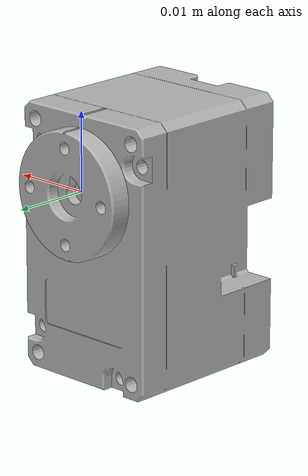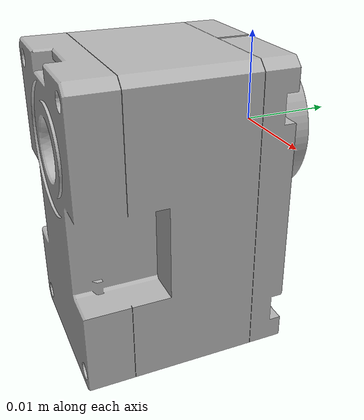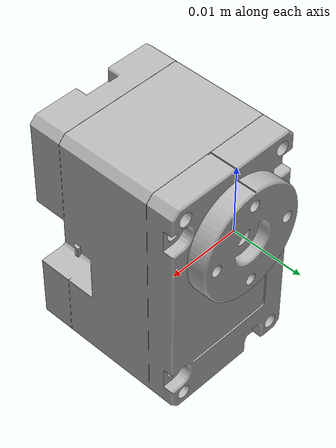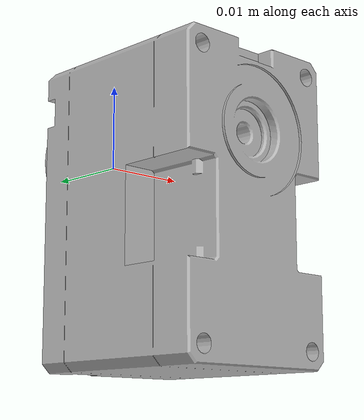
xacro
<?xml version="1.0" ?>
<robot name="dynamixel" xmlns:xacro="http://www.ros.org/wiki/xacro">

<xacro:include filename="$(find dynamixel_description)/urdf/materials.xacro" />
<xacro:include filename="$(find dynamixel_description)/urdf/dynamixel.trans" />
<xacro:include filename="$(find dynamixel_description)/urdf/dynamixel.gazebo" />

<link name="base_link">
  <inertial>
    <origin xyz="-1.3696546658476628e-05 -0.011227940210464343 -0.007509758370360145" rpy="0 0 0"/>
    <mass value="0.11123576534541824"/>
    <inertia ixx="1.6e-05" iyy="1.4e-05" izz="8e-06" ixy="0.0" iyz="-0.0" ixz="-0.0"/>
  </inertial>
  <visual>
    <origin xyz="0 0 0" rpy="0 0 0"/>
    <geometry>
      <mesh filename="package://dynamixel_description/meshes/base_link.stl" scale="0.001 0.001 0.001"/>
    </geometry>
    <material name="silver"/>
  </visual>
  <collision>
    <origin xyz="0 0 0" rpy="0 0 0"/>
    <geometry>
      <mesh filename="package://dynamixel_description/meshes/base_link.stl" scale="0.001 0.001 0.001"/>
    </geometry>
  </collision>
</link>

<link name="shaft_1">
  <inertial>
    <origin xyz="-6.524556626078737e-14 0.0014988491033203202 -3.996224044255299e-06" rpy="0 0 0"/>
    <mass value="0.004031659689068819"/>
    <inertia ixx="0.0" iyy="0.0" izz="0.0" ixy="0.0" iyz="-0.0" ixz="0.0"/>
  </inertial>
  <visual>
    <origin xyz="-0.0 0.0001 -0.0" rpy="0 0 0"/>
    <geometry>
      <mesh filename="package://dynamixel_description/meshes/shaft_1.stl" scale="0.001 0.001 0.001"/>
    </geometry>
    <material name="silver"/>
  </visual>
  <collision>
    <origin xyz="-0.0 0.0001 -0.0" rpy="0 0 0"/>
    <geometry>
      <mesh filename="package://dynamixel_description/meshes/shaft_1.stl" scale="0.001 0.001 0.001"/>
    </geometry>
  </collision>
</link>

<joint name="rev_1" type="revolute">
  <origin xyz="0.0 -0.0001 0.0" rpy="0 0 0"/>
  <limit effort="30" lower="0" upper="3.14159265359" velocity="1"/>
  <parent link="base_link"/>
  <child link="shaft_1"/>
  <axis xyz="0.0 1.0 0.0"/>
</joint>

</robot>

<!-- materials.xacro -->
<robot name="dynamixel" xmlns:xacro="http://www.ros.org/wiki/xacro" >

<material name="silver">
  <color rgba="0.700 0.700 0.700 1.000"/>
</material>

</robot>

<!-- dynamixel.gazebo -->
<robot name="dynamixel" xmlns:xacro="http://www.ros.org/wiki/xacro" >

<xacro:property name="body_color" value="Gazebo/Silver" />

<gazebo>
  <plugin name="control" filename="libgazebo_ros_control.so"/>
</gazebo>
<gazebo reference="base_link">
  <material>${body_color}</material>
  <mu1>0.2</mu1>
  <mu2>0.2</mu2>
  <selfCollide>true</selfCollide>
  <gravity>true</gravity>
</gazebo>

<gazebo reference="shaft_1">
  <material>${body_color}</material>
  <mu1>0.2</mu1>
  <mu2>0.2</mu2>
  <selfCollide>true</selfCollide>
</gazebo>

</robot>
